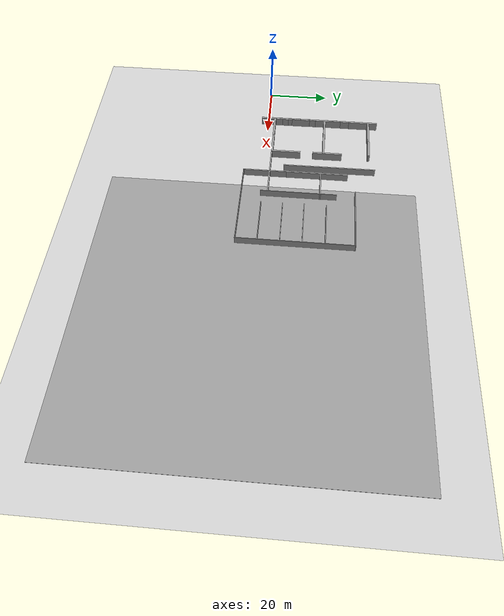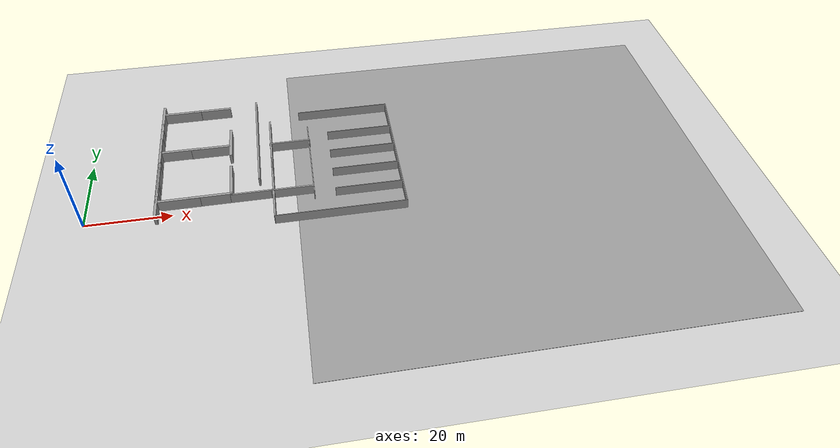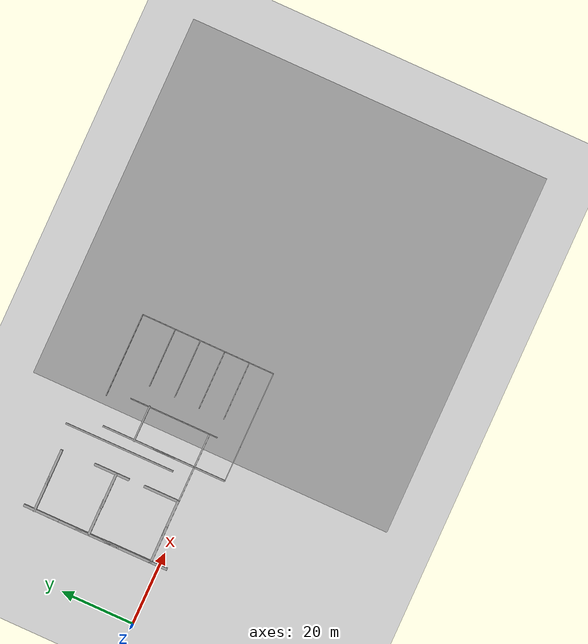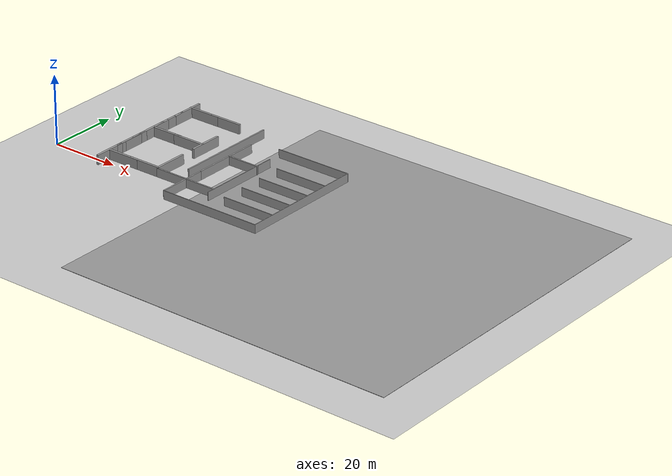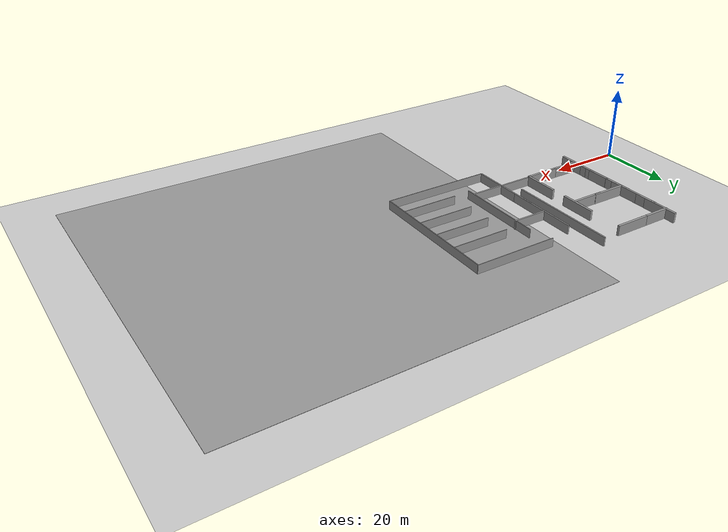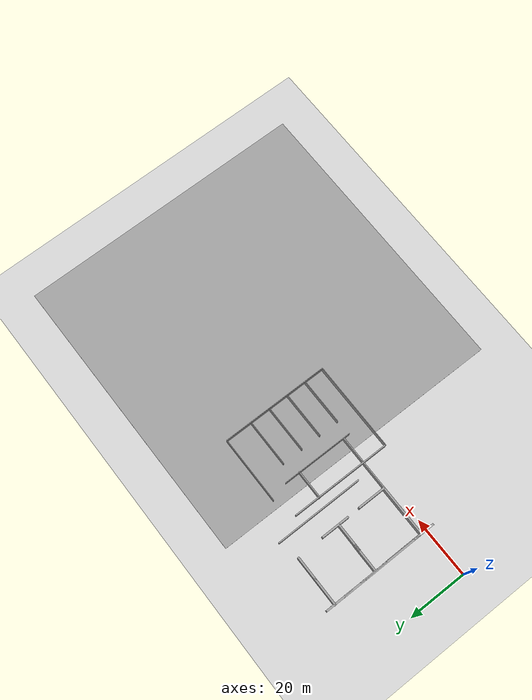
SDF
<sdf version="1.7">
 <world name="default">
  <model name="ground_plane">
   <static>1</static>
   <link name="link">
    <collision name="collision">
     <geometry><plane><normal>0 0 1</normal><size>100 100</size></plane></geometry>
     <surface><friction><ode><mu>100</mu><mu2>50</mu2></ode></friction></surface>
    </collision>
    <visual name="visual">
     <cast_shadows>0</cast_shadows>
     <geometry><plane><normal>0 0 1</normal><size>100 100</size></plane></geometry>
     <material>
      <script><uri>file://media/materials/scripts/gazebo.material</uri><name>Gazebo/Grey</name></script>
     </material>
    </visual>
   </link>
  </model>
  <model name="ground_plane_0">
   <static>1</static>
   <link name="link">
    <collision name="collision">
     <geometry><plane><normal>0 0 1</normal><size>100 100</size></plane></geometry>
     <surface>
      <contact><collide_bitmask>65535</collide_bitmask></contact>
      <friction><ode><mu>100</mu><mu2>50</mu2></ode></friction>
     </surface>
    </collision>
    <visual name="visual">
     <cast_shadows>0</cast_shadows>
     <geometry><plane><normal>0 0 1</normal><size>100 100</size></plane></geometry>
     <material>
      <script><uri>file://media/materials/scripts/gazebo.material</uri><name>Gazebo/Grey</name></script>
     </material>
    </visual>
   </link>
   <pose>98.3802 0.128223 0 0 -0 0</pose>
  </model>
  <model name="grey_wall_hou_clone_clone_clone_5">
   <link name="link">
    <pose>0 0 1.37589 0 -0 0</pose>
    <inertial>
     <inertia><ixx>0</ixx><ixy>0</ixy><ixz>0</ixz><iyy>0</iyy><iyz>0</iyz><izz>0</izz></inertia>
     <mass>0</mass>
    </inertial>
    <visual name="visual">
     <cast_shadows>0</cast_shadows>
     <geometry><box><size>9.82221 0.642976 2.8</size></box></geometry>
     <material>
      <script>
       <uri>model://grey_wall/materials/scripts</uri>
       <uri>model://grey_wall/materials/textures</uri>
       <name>vrc/grey_wall</name>
      </script>
      <shader type="pixel"><normal_map>__default__</normal_map></shader>
      <ambient>1 1 1 1</ambient>
      <diffuse>1 1 1 1</diffuse>
      <specular>0 0 0 1</specular>
      <emissive>0 0 0 1</emissive>
     </material>
    </visual>
    <collision name="collision">
     <geometry><box><size>9.82221 0.642976 2.8</size></box></geometry>
     <surface>
      <friction>
       <ode><mu>1</mu><mu2>1</mu2><fdir1>0 0 0</fdir1><slip1>0</slip1><slip2>0</slip2></ode>
       <torsional>
        <coefficient>1</coefficient>
        <patch_radius>0</patch_radius>
        <surface_radius>0</surface_radius>
        <use_patch_radius>1</use_patch_radius>
        <ode><slip>0</slip></ode>
       </torsional>
      </friction>
      <bounce><restitution_coefficient>0</restitution_coefficient><threshold>1e+06</threshold></bounce>
      <contact>
       <collide_without_contact>0</collide_without_contact>
       <collide_without_contact_bitmask>1</collide_without_contact_bitmask>
       <collide_bitmask>1</collide_bitmask>
       <ode>
        <soft_cfm>0</soft_cfm>
        <soft_erp>0.2</soft_erp>
        <kp>1e+13</kp>
        <kd>1</kd>
        <max_vel>0.01</max_vel>
        <min_depth>0</min_depth>
       </ode>
       <bullet>
        <split_impulse>1</split_impulse>
        <split_impulse_penetration_threshold>-0.01</split_impulse_penetration_threshold>
        <soft_cfm>0</soft_cfm>
        <soft_erp>0.2</soft_erp>
        <kp>1e+13</kp>
        <kd>1</kd>
       </bullet>
      </contact>
     </surface>
    </collision>
   </link>
   <static>1</static>
   <pose>21.5273 2.36287 0 0 -0 0</pose>
  </model>
  <model name="grey_wall_hou_clone_clone_3_clone_4">
   <link name="link">
    <pose>0 0 1.37589 0 -0 0</pose>
    <inertial>
     <inertia><ixx>0</ixx><ixy>0</ixy><ixz>0</ixz><iyy>0</iyy><iyz>0</iyz><izz>0</izz></inertia>
     <mass>0</mass>
    </inertial>
    <visual name="visual">
     <cast_shadows>0</cast_shadows>
     <geometry><box><size>9.82221 0.642976 2.8</size></box></geometry>
     <material>
      <script>
       <uri>model://grey_wall/materials/scripts</uri>
       <uri>model://grey_wall/materials/textures</uri>
       <name>vrc/grey_wall</name>
      </script>
      <shader type="pixel"><normal_map>__default__</normal_map></shader>
      <ambient>1 1 1 1</ambient>
      <diffuse>1 1 1 1</diffuse>
      <specular>0 0 0 1</specular>
      <emissive>0 0 0 1</emissive>
     </material>
    </visual>
    <collision name="collision">
     <geometry><box><size>9.82221 0.642976 2.8</size></box></geometry>
     <surface>
      <friction>
       <ode><mu>1</mu><mu2>1</mu2><fdir1>0 0 0</fdir1><slip1>0</slip1><slip2>0</slip2></ode>
       <torsional>
        <coefficient>1</coefficient>
        <patch_radius>0</patch_radius>
        <surface_radius>0</surface_radius>
        <use_patch_radius>1</use_patch_radius>
        <ode><slip>0</slip></ode>
       </torsional>
      </friction>
      <bounce><restitution_coefficient>0</restitution_coefficient><threshold>1e+06</threshold></bounce>
      <contact>
       <collide_without_contact>0</collide_without_contact>
       <collide_without_contact_bitmask>1</collide_without_contact_bitmask>
       <collide_bitmask>1</collide_bitmask>
       <ode>
        <soft_cfm>0</soft_cfm>
        <soft_erp>0.2</soft_erp>
        <kp>1e+13</kp>
        <kd>1</kd>
        <max_vel>0.01</max_vel>
        <min_depth>0</min_depth>
       </ode>
       <bullet>
        <split_impulse>1</split_impulse>
        <split_impulse_penetration_threshold>-0.01</split_impulse_penetration_threshold>
        <soft_cfm>0</soft_cfm>
        <soft_erp>0.2</soft_erp>
        <kp>1e+13</kp>
        <kd>1</kd>
       </bullet>
      </contact>
     </surface>
    </collision>
   </link>
   <static>1</static>
   <pose>16.3936 20.4757 0 0 0 -1.56855</pose>
  </model>
  <model name="grey_wall_hou_clone_clone_clone_6">
   <link name="link">
    <pose>0 0 1.37589 0 -0 0</pose>
    <inertial>
     <inertia><ixx>0</ixx><ixy>0</ixy><ixz>0</ixz><iyy>0</iyy><iyz>0</iyz><izz>0</izz></inertia>
     <mass>0</mass>
    </inertial>
    <visual name="visual">
     <cast_shadows>0</cast_shadows>
     <geometry><box><size>9.82221 0.642976 2.8</size></box></geometry>
     <material>
      <script>
       <uri>model://grey_wall/materials/scripts</uri>
       <uri>model://grey_wall/materials/textures</uri>
       <name>vrc/grey_wall</name>
      </script>
      <shader type="pixel"><normal_map>__default__</normal_map></shader>
      <ambient>1 1 1 1</ambient>
      <diffuse>1 1 1 1</diffuse>
      <specular>0 0 0 1</specular>
      <emissive>0 0 0 1</emissive>
     </material>
    </visual>
    <collision name="collision">
     <geometry><box><size>9.82221 0.642976 2.8</size></box></geometry>
     <surface>
      <friction>
       <ode><mu>1</mu><mu2>1</mu2><fdir1>0 0 0</fdir1><slip1>0</slip1><slip2>0</slip2></ode>
       <torsional>
        <coefficient>1</coefficient>
        <patch_radius>0</patch_radius>
        <surface_radius>0</surface_radius>
        <use_patch_radius>1</use_patch_radius>
        <ode><slip>0</slip></ode>
       </torsional>
      </friction>
      <bounce><restitution_coefficient>0</restitution_coefficient><threshold>1e+06</threshold></bounce>
      <contact>
       <collide_without_contact>0</collide_without_contact>
       <collide_without_contact_bitmask>1</collide_without_contact_bitmask>
       <collide_bitmask>1</collide_bitmask>
       <ode>
        <soft_cfm>0</soft_cfm>
        <soft_erp>0.2</soft_erp>
        <kp>1e+13</kp>
        <kd>1</kd>
        <max_vel>0.01</max_vel>
        <min_depth>0</min_depth>
       </ode>
       <bullet>
        <split_impulse>1</split_impulse>
        <split_impulse_penetration_threshold>-0.01</split_impulse_penetration_threshold>
        <soft_cfm>0</soft_cfm>
        <soft_erp>0.2</soft_erp>
        <kp>1e+13</kp>
        <kd>1</kd>
       </bullet>
      </contact>
     </surface>
    </collision>
   </link>
   <static>1</static>
   <pose>28.8284 2.39593 0 0 -0 0</pose>
  </model>
  <model name="grey_wall_hou_clone_clone_clone_7">
   <link name="link">
    <pose>0 0 1.37589 0 -0 0</pose>
    <inertial>
     <inertia><ixx>0</ixx><ixy>0</ixy><ixz>0</ixz><iyy>0</iyy><iyz>0</iyz><izz>0</izz></inertia>
     <mass>0</mass>
    </inertial>
    <visual name="visual">
     <cast_shadows>0</cast_shadows>
     <geometry><box><size>9.82221 0.642976 2.8</size></box></geometry>
     <material>
      <script>
       <uri>model://grey_wall/materials/scripts</uri>
       <uri>model://grey_wall/materials/textures</uri>
       <name>vrc/grey_wall</name>
      </script>
      <shader type="pixel"><normal_map>__default__</normal_map></shader>
      <ambient>1 1 1 1</ambient>
      <diffuse>1 1 1 1</diffuse>
      <specular>0 0 0 1</specular>
      <emissive>0 0 0 1</emissive>
     </material>
    </visual>
    <collision name="collision">
     <geometry><box><size>9.82221 0.642976 2.8</size></box></geometry>
     <surface>
      <friction>
       <ode><mu>1</mu><mu2>1</mu2><fdir1>0 0 0</fdir1><slip1>0</slip1><slip2>0</slip2></ode>
       <torsional>
        <coefficient>1</coefficient>
        <patch_radius>0</patch_radius>
        <surface_radius>0</surface_radius>
        <use_patch_radius>1</use_patch_radius>
        <ode><slip>0</slip></ode>
       </torsional>
      </friction>
      <bounce><restitution_coefficient>0</restitution_coefficient><threshold>1e+06</threshold></bounce>
      <contact>
       <collide_without_contact>0</collide_without_contact>
       <collide_without_contact_bitmask>1</collide_without_contact_bitmask>
       <collide_bitmask>1</collide_bitmask>
       <ode>
        <soft_cfm>0</soft_cfm>
        <soft_erp>0.2</soft_erp>
        <kp>1e+13</kp>
        <kd>1</kd>
        <max_vel>0.01</max_vel>
        <min_depth>0</min_depth>
       </ode>
       <bullet>
        <split_impulse>1</split_impulse>
        <split_impulse_penetration_threshold>-0.01</split_impulse_penetration_threshold>
        <soft_cfm>0</soft_cfm>
        <soft_erp>0.2</soft_erp>
        <kp>1e+13</kp>
        <kd>1</kd>
       </bullet>
      </contact>
     </surface>
    </collision>
   </link>
   <static>1</static>
   <pose>28.7009 19.7656 0 0 -0 0</pose>
  </model>
  <model name="grey_wall_hou_clone_clone_clone_8">
   <link name="link">
    <pose>0 0 1.37589 0 -0 0</pose>
    <inertial>
     <inertia><ixx>0</ixx><ixy>0</ixy><ixz>0</ixz><iyy>0</iyy><iyz>0</iyz><izz>0</izz></inertia>
     <mass>0</mass>
    </inertial>
    <visual name="visual">
     <cast_shadows>0</cast_shadows>
     <geometry><box><size>9.82221 0.642976 2.8</size></box></geometry>
     <material>
      <script>
       <uri>model://grey_wall/materials/scripts</uri>
       <uri>model://grey_wall/materials/textures</uri>
       <name>vrc/grey_wall</name>
      </script>
      <shader type="pixel"><normal_map>__default__</normal_map></shader>
      <ambient>1 1 1 1</ambient>
      <diffuse>1 1 1 1</diffuse>
      <specular>0 0 0 1</specular>
      <emissive>0 0 0 1</emissive>
     </material>
    </visual>
    <collision name="collision">
     <geometry><box><size>9.82221 0.642976 2.8</size></box></geometry>
     <surface>
      <friction>
       <ode><mu>1</mu><mu2>1</mu2><fdir1>0 0 0</fdir1><slip1>0</slip1><slip2>0</slip2></ode>
       <torsional>
        <coefficient>1</coefficient>
        <patch_radius>0</patch_radius>
        <surface_radius>0</surface_radius>
        <use_patch_radius>1</use_patch_radius>
        <ode><slip>0</slip></ode>
       </torsional>
      </friction>
      <bounce><restitution_coefficient>0</restitution_coefficient><threshold>1e+06</threshold></bounce>
      <contact>
       <collide_without_contact>0</collide_without_contact>
       <collide_without_contact_bitmask>1</collide_without_contact_bitmask>
       <collide_bitmask>1</collide_bitmask>
       <ode>
        <soft_cfm>0</soft_cfm>
        <soft_erp>0.2</soft_erp>
        <kp>1e+13</kp>
        <kd>1</kd>
        <max_vel>0.01</max_vel>
        <min_depth>0</min_depth>
       </ode>
       <bullet>
        <split_impulse>1</split_impulse>
        <split_impulse_penetration_threshold>-0.01</split_impulse_penetration_threshold>
        <soft_cfm>0</soft_cfm>
        <soft_erp>0.2</soft_erp>
        <kp>1e+13</kp>
        <kd>1</kd>
       </bullet>
      </contact>
     </surface>
    </collision>
   </link>
   <static>1</static>
   <pose>21.1249 19.8433 0 0 -0 0</pose>
  </model>
  <model name="grey_wall_hou_clone_clone_clone_9">
   <link name="link">
    <pose>0 0 1.37589 0 -0 0</pose>
    <inertial>
     <inertia><ixx>0</ixx><ixy>0</ixy><ixz>0</ixz><iyy>0</iyy><iyz>0</iyz><izz>0</izz></inertia>
     <mass>0</mass>
    </inertial>
    <visual name="visual">
     <cast_shadows>0</cast_shadows>
     <geometry><box><size>9.82221 0.642976 2.8</size></box></geometry>
     <material>
      <script>
       <uri>model://grey_wall/materials/scripts</uri>
       <uri>model://grey_wall/materials/textures</uri>
       <name>vrc/grey_wall</name>
      </script>
      <shader type="pixel"><normal_map>__default__</normal_map></shader>
      <ambient>1 1 1 1</ambient>
      <diffuse>1 1 1 1</diffuse>
      <specular>0 0 0 1</specular>
      <emissive>0 0 0 1</emissive>
     </material>
    </visual>
    <collision name="collision">
     <geometry><box><size>9.82221 0.642976 2.8</size></box></geometry>
     <surface>
      <friction>
       <ode><mu>1</mu><mu2>1</mu2><fdir1>0 0 0</fdir1><slip1>0</slip1><slip2>0</slip2></ode>
       <torsional>
        <coefficient>1</coefficient>
        <patch_radius>0</patch_radius>
        <surface_radius>0</surface_radius>
        <use_patch_radius>1</use_patch_radius>
        <ode><slip>0</slip></ode>
       </torsional>
      </friction>
      <bounce><restitution_coefficient>0</restitution_coefficient><threshold>1e+06</threshold></bounce>
      <contact>
       <collide_without_contact>0</collide_without_contact>
       <collide_without_contact_bitmask>1</collide_without_contact_bitmask>
       <collide_bitmask>1</collide_bitmask>
       <ode>
        <soft_cfm>0</soft_cfm>
        <soft_erp>0.2</soft_erp>
        <kp>1e+13</kp>
        <kd>1</kd>
        <max_vel>0.01</max_vel>
        <min_depth>0</min_depth>
       </ode>
       <bullet>
        <split_impulse>1</split_impulse>
        <split_impulse_penetration_threshold>-0.01</split_impulse_penetration_threshold>
        <soft_cfm>0</soft_cfm>
        <soft_erp>0.2</soft_erp>
        <kp>1e+13</kp>
        <kd>1</kd>
       </bullet>
      </contact>
     </surface>
    </collision>
   </link>
   <static>1</static>
   <pose>20.8801 35.0651 0 0 -0 0</pose>
  </model>
  <model name="grey_wall_hou_clone_clone_clone_10">
   <link name="link">
    <pose>0 0 1.37589 0 -0 0</pose>
    <inertial>
     <inertia><ixx>0</ixx><ixy>0</ixy><ixz>0</ixz><iyy>0</iyy><iyz>0</iyz><izz>0</izz></inertia>
     <mass>0</mass>
    </inertial>
    <visual name="visual">
     <cast_shadows>0</cast_shadows>
     <geometry><box><size>9.82221 0.642976 2.8</size></box></geometry>
     <material>
      <script>
       <uri>model://grey_wall/materials/scripts</uri>
       <uri>model://grey_wall/materials/textures</uri>
       <name>vrc/grey_wall</name>
      </script>
      <shader type="pixel"><normal_map>__default__</normal_map></shader>
      <ambient>1 1 1 1</ambient>
      <diffuse>1 1 1 1</diffuse>
      <specular>0 0 0 1</specular>
      <emissive>0 0 0 1</emissive>
     </material>
    </visual>
    <collision name="collision">
     <geometry><box><size>9.82221 0.642976 2.8</size></box></geometry>
     <surface>
      <friction>
       <ode><mu>1</mu><mu2>1</mu2><fdir1>0 0 0</fdir1><slip1>0</slip1><slip2>0</slip2></ode>
       <torsional>
        <coefficient>1</coefficient>
        <patch_radius>0</patch_radius>
        <surface_radius>0</surface_radius>
        <use_patch_radius>1</use_patch_radius>
        <ode><slip>0</slip></ode>
       </torsional>
      </friction>
      <bounce><restitution_coefficient>0</restitution_coefficient><threshold>1e+06</threshold></bounce>
      <contact>
       <collide_without_contact>0</collide_without_contact>
       <collide_without_contact_bitmask>1</collide_without_contact_bitmask>
       <collide_bitmask>1</collide_bitmask>
       <ode>
        <soft_cfm>0</soft_cfm>
        <soft_erp>0.2</soft_erp>
        <kp>1e+13</kp>
        <kd>1</kd>
        <max_vel>0.01</max_vel>
        <min_depth>0</min_depth>
       </ode>
       <bullet>
        <split_impulse>1</split_impulse>
        <split_impulse_penetration_threshold>-0.01</split_impulse_penetration_threshold>
        <soft_cfm>0</soft_cfm>
        <soft_erp>0.2</soft_erp>
        <kp>1e+13</kp>
        <kd>1</kd>
       </bullet>
      </contact>
     </surface>
    </collision>
   </link>
   <static>1</static>
   <pose>28.4204 35.0767 0 0 -0 0</pose>
  </model>
  <model name="grey_wall_short_0_clone_2">
   <link name="link">
    <pose>0 0 1.37589 0 -0 0</pose>
    <inertial>
     <inertia><ixx>0</ixx><ixy>0</ixy><ixz>0</ixz><iyy>0</iyy><iyz>0</iyz><izz>0</izz></inertia>
     <mass>0</mass>
    </inertial>
    <visual name="visual">
     <cast_shadows>0</cast_shadows>
     <geometry><box><size>3.01651 0.642976 2.8</size></box></geometry>
     <material>
      <script>
       <uri>model://grey_wall/materials/scripts</uri>
       <uri>model://grey_wall/materials/textures</uri>
       <name>vrc/grey_wall</name>
      </script>
      <shader type="pixel"><normal_map>__default__</normal_map></shader>
      <ambient>1 1 1 1</ambient>
      <diffuse>1 1 1 1</diffuse>
      <specular>0 0 0 1</specular>
      <emissive>0 0 0 1</emissive>
     </material>
    </visual>
    <collision name="collision">
     <geometry><box><size>3.01651 0.642976 2.8</size></box></geometry>
     <surface>
      <friction>
       <ode><mu>1</mu><mu2>1</mu2><fdir1>0 0 0</fdir1><slip1>0</slip1><slip2>0</slip2></ode>
       <torsional>
        <coefficient>1</coefficient>
        <patch_radius>0</patch_radius>
        <surface_radius>0</surface_radius>
        <use_patch_radius>1</use_patch_radius>
        <ode><slip>0</slip></ode>
       </torsional>
      </friction>
      <bounce><restitution_coefficient>0</restitution_coefficient><threshold>1e+06</threshold></bounce>
      <contact>
       <collide_without_contact>0</collide_without_contact>
       <collide_without_contact_bitmask>1</collide_without_contact_bitmask>
       <collide_bitmask>1</collide_bitmask>
       <ode>
        <soft_cfm>0</soft_cfm>
        <soft_erp>0.2</soft_erp>
        <kp>1e+13</kp>
        <kd>1</kd>
        <max_vel>0.01</max_vel>
        <min_depth>0</min_depth>
       </ode>
       <bullet>
        <split_impulse>1</split_impulse>
        <split_impulse_penetration_threshold>-0.01</split_impulse_penetration_threshold>
        <soft_cfm>0</soft_cfm>
        <soft_erp>0.2</soft_erp>
        <kp>1e+13</kp>
        <kd>1</kd>
       </bullet>
      </contact>
     </surface>
    </collision>
   </link>
   <static>1</static>
   <pose>16.5494 3.563 0 0 0 -1.57204</pose>
  </model>
  <model name="grey_wall_short_0_clone_3">
   <link name="link">
    <pose>0 0 1.37589 0 -0 0</pose>
    <inertial>
     <inertia><ixx>0</ixx><ixy>0</ixy><ixz>0</ixz><iyy>0</iyy><iyz>0</iyz><izz>0</izz></inertia>
     <mass>0</mass>
    </inertial>
    <visual name="visual">
     <cast_shadows>0</cast_shadows>
     <geometry><box><size>3.01651 0.642976 2.8</size></box></geometry>
     <material>
      <script>
       <uri>model://grey_wall/materials/scripts</uri>
       <uri>model://grey_wall/materials/textures</uri>
       <name>vrc/grey_wall</name>
      </script>
      <shader type="pixel"><normal_map>__default__</normal_map></shader>
      <ambient>1 1 1 1</ambient>
      <diffuse>1 1 1 1</diffuse>
      <specular>0 0 0 1</specular>
      <emissive>0 0 0 1</emissive>
     </material>
    </visual>
    <collision name="collision">
     <geometry><box><size>3.01651 0.642976 2.8</size></box></geometry>
     <surface>
      <friction>
       <ode><mu>1</mu><mu2>1</mu2><fdir1>0 0 0</fdir1><slip1>0</slip1><slip2>0</slip2></ode>
       <torsional>
        <coefficient>1</coefficient>
        <patch_radius>0</patch_radius>
        <surface_radius>0</surface_radius>
        <use_patch_radius>1</use_patch_radius>
        <ode><slip>0</slip></ode>
       </torsional>
      </friction>
      <bounce><restitution_coefficient>0</restitution_coefficient><threshold>1e+06</threshold></bounce>
      <contact>
       <collide_without_contact>0</collide_without_contact>
       <collide_without_contact_bitmask>1</collide_without_contact_bitmask>
       <collide_bitmask>1</collide_bitmask>
       <ode>
        <soft_cfm>0</soft_cfm>
        <soft_erp>0.2</soft_erp>
        <kp>1e+13</kp>
        <kd>1</kd>
        <max_vel>0.01</max_vel>
        <min_depth>0</min_depth>
       </ode>
       <bullet>
        <split_impulse>1</split_impulse>
        <split_impulse_penetration_threshold>-0.01</split_impulse_penetration_threshold>
        <soft_cfm>0</soft_cfm>
        <soft_erp>0.2</soft_erp>
        <kp>1e+13</kp>
        <kd>1</kd>
       </bullet>
      </contact>
     </surface>
    </collision>
   </link>
   <static>1</static>
   <pose>16.5374 5.55252 0 0 0 -1.57204</pose>
  </model>
  <model name="grey_wall_short_0_clone_4">
   <link name="link">
    <pose>0 0 1.37589 0 -0 0</pose>
    <inertial>
     <inertia><ixx>0</ixx><ixy>0</ixy><ixz>0</ixz><iyy>0</iyy><iyz>0</iyz><izz>0</izz></inertia>
     <mass>0</mass>
    </inertial>
    <visual name="visual">
     <cast_shadows>0</cast_shadows>
     <geometry><box><size>3.01651 0.642976 2.8</size></box></geometry>
     <material>
      <script>
       <uri>model://grey_wall/materials/scripts</uri>
       <uri>model://grey_wall/materials/textures</uri>
       <name>vrc/grey_wall</name>
      </script>
      <shader type="pixel"><normal_map>__default__</normal_map></shader>
      <ambient>1 1 1 1</ambient>
      <diffuse>1 1 1 1</diffuse>
      <specular>0 0 0 1</specular>
      <emissive>0 0 0 1</emissive>
     </material>
    </visual>
    <collision name="collision">
     <geometry><box><size>3.01651 0.642976 2.8</size></box></geometry>
     <surface>
      <friction>
       <ode><mu>1</mu><mu2>1</mu2><fdir1>0 0 0</fdir1><slip1>0</slip1><slip2>0</slip2></ode>
       <torsional>
        <coefficient>1</coefficient>
        <patch_radius>0</patch_radius>
        <surface_radius>0</surface_radius>
        <use_patch_radius>1</use_patch_radius>
        <ode><slip>0</slip></ode>
       </torsional>
      </friction>
      <bounce><restitution_coefficient>0</restitution_coefficient><threshold>1e+06</threshold></bounce>
      <contact>
       <collide_without_contact>0</collide_without_contact>
       <collide_without_contact_bitmask>1</collide_without_contact_bitmask>
       <collide_bitmask>1</collide_bitmask>
       <ode>
        <soft_cfm>0</soft_cfm>
        <soft_erp>0.2</soft_erp>
        <kp>1e+13</kp>
        <kd>1</kd>
        <max_vel>0.01</max_vel>
        <min_depth>0</min_depth>
       </ode>
       <bullet>
        <split_impulse>1</split_impulse>
        <split_impulse_penetration_threshold>-0.01</split_impulse_penetration_threshold>
        <soft_cfm>0</soft_cfm>
        <soft_erp>0.2</soft_erp>
        <kp>1e+13</kp>
        <kd>1</kd>
       </bullet>
      </contact>
     </surface>
    </collision>
   </link>
   <static>1</static>
   <pose>16.5353 6.8515 0 0 0 -1.57204</pose>
  </model>
  <model name="grey_wall_short_0_clone_5">
   <link name="link">
    <pose>0 0 1.37589 0 -0 0</pose>
    <inertial>
     <inertia><ixx>0</ixx><ixy>0</ixy><ixz>0</ixz><iyy>0</iyy><iyz>0</iyz><izz>0</izz></inertia>
     <mass>0</mass>
    </inertial>
    <visual name="visual">
     <cast_shadows>0</cast_shadows>
     <geometry><box><size>3.01651 0.642976 2.8</size></box></geometry>
     <material>
      <script>
       <uri>model://grey_wall/materials/scripts</uri>
       <uri>model://grey_wall/materials/textures</uri>
       <name>vrc/grey_wall</name>
      </script>
      <shader type="pixel"><normal_map>__default__</normal_map></shader>
      <ambient>1 1 1 1</ambient>
      <diffuse>1 1 1 1</diffuse>
      <specular>0 0 0 1</specular>
      <emissive>0 0 0 1</emissive>
     </material>
    </visual>
    <collision name="collision">
     <geometry><box><size>3.01651 0.642976 2.8</size></box></geometry>
     <surface>
      <friction>
       <ode><mu>1</mu><mu2>1</mu2><fdir1>0 0 0</fdir1><slip1>0</slip1><slip2>0</slip2></ode>
       <torsional>
        <coefficient>1</coefficient>
        <patch_radius>0</patch_radius>
        <surface_radius>0</surface_radius>
        <use_patch_radius>1</use_patch_radius>
        <ode><slip>0</slip></ode>
       </torsional>
      </friction>
      <bounce><restitution_coefficient>0</restitution_coefficient><threshold>1e+06</threshold></bounce>
      <contact>
       <collide_without_contact>0</collide_without_contact>
       <collide_without_contact_bitmask>1</collide_without_contact_bitmask>
       <collide_bitmask>1</collide_bitmask>
       <ode>
        <soft_cfm>0</soft_cfm>
        <soft_erp>0.2</soft_erp>
        <kp>1e+13</kp>
        <kd>1</kd>
        <max_vel>0.01</max_vel>
        <min_depth>0</min_depth>
       </ode>
       <bullet>
        <split_impulse>1</split_impulse>
        <split_impulse_penetration_threshold>-0.01</split_impulse_penetration_threshold>
        <soft_cfm>0</soft_cfm>
        <soft_erp>0.2</soft_erp>
        <kp>1e+13</kp>
        <kd>1</kd>
       </bullet>
      </contact>
     </surface>
    </collision>
   </link>
   <static>1</static>
   <pose>16.4538 12.9881 0 0 0 -1.57204</pose>
  </model>
  <model name="grey_wall_short_0_clone_6">
   <link name="link">
    <pose>0 0 1.37589 0 -0 0</pose>
    <inertial>
     <inertia><ixx>0</ixx><ixy>0</ixy><ixz>0</ixz><iyy>0</iyy><iyz>0</iyz><izz>0</izz></inertia>
     <mass>0</mass>
    </inertial>
    <visual name="visual">
     <cast_shadows>0</cast_shadows>
     <geometry><box><size>3.01651 0.642976 2.8</size></box></geometry>
     <material>
      <script>
       <uri>model://grey_wall/materials/scripts</uri>
       <uri>model://grey_wall/materials/textures</uri>
       <name>vrc/grey_wall</name>
      </script>
      <shader type="pixel"><normal_map>__default__</normal_map></shader>
      <ambient>1 1 1 1</ambient>
      <diffuse>1 1 1 1</diffuse>
      <specular>0 0 0 1</specular>
      <emissive>0 0 0 1</emissive>
     </material>
    </visual>
    <collision name="collision">
     <geometry><box><size>3.01651 0.642976 2.8</size></box></geometry>
     <surface>
      <friction>
       <ode><mu>1</mu><mu2>1</mu2><fdir1>0 0 0</fdir1><slip1>0</slip1><slip2>0</slip2></ode>
       <torsional>
        <coefficient>1</coefficient>
        <patch_radius>0</patch_radius>
        <surface_radius>0</surface_radius>
        <use_patch_radius>1</use_patch_radius>
        <ode><slip>0</slip></ode>
       </torsional>
      </friction>
      <bounce><restitution_coefficient>0</restitution_coefficient><threshold>1e+06</threshold></bounce>
      <contact>
       <collide_without_contact>0</collide_without_contact>
       <collide_without_contact_bitmask>1</collide_without_contact_bitmask>
       <collide_bitmask>1</collide_bitmask>
       <ode>
        <soft_cfm>0</soft_cfm>
        <soft_erp>0.2</soft_erp>
        <kp>1e+13</kp>
        <kd>1</kd>
        <max_vel>0.01</max_vel>
        <min_depth>0</min_depth>
       </ode>
       <bullet>
        <split_impulse>1</split_impulse>
        <split_impulse_penetration_threshold>-0.01</split_impulse_penetration_threshold>
        <soft_cfm>0</soft_cfm>
        <soft_erp>0.2</soft_erp>
        <kp>1e+13</kp>
        <kd>1</kd>
       </bullet>
      </contact>
     </surface>
    </collision>
   </link>
   <static>1</static>
   <pose>16.4413 15.1358 0 0 0 -1.57204</pose>
  </model>
  <model name="grey_wall_hou_clone_clone_3_clone_0_clone_1_clone_2_clone">
   <link name="link">
    <pose>0 0 1.37589 0 -0 0</pose>
    <inertial>
     <inertia><ixx>0</ixx><ixy>0</ixy><ixz>0</ixz><iyy>0</iyy><iyz>0</iyz><izz>0</izz></inertia>
     <mass>0</mass>
    </inertial>
    <visual name="visual">
     <cast_shadows>0</cast_shadows>
     <geometry><box><size>9.82221 0.642976 2.8</size></box></geometry>
     <material>
      <script>
       <uri>model://grey_wall/materials/scripts</uri>
       <uri>model://grey_wall/materials/textures</uri>
       <name>vrc/grey_wall</name>
      </script>
      <shader type="pixel"><normal_map>__default__</normal_map></shader>
      <ambient>1 1 1 1</ambient>
      <diffuse>1 1 1 1</diffuse>
      <specular>0 0 0 1</specular>
      <emissive>0 0 0 1</emissive>
     </material>
    </visual>
    <collision name="collision">
     <geometry><box><size>9.82221 0.642976 2.8</size></box></geometry>
     <surface>
      <friction>
       <ode><mu>1</mu><mu2>1</mu2><fdir1>0 0 0</fdir1><slip1>0</slip1><slip2>0</slip2></ode>
       <torsional>
        <coefficient>1</coefficient>
        <patch_radius>0</patch_radius>
        <surface_radius>0</surface_radius>
        <use_patch_radius>1</use_patch_radius>
        <ode><slip>0</slip></ode>
       </torsional>
      </friction>
      <bounce><restitution_coefficient>0</restitution_coefficient><threshold>1e+06</threshold></bounce>
      <contact>
       <collide_without_contact>0</collide_without_contact>
       <collide_without_contact_bitmask>1</collide_without_contact_bitmask>
       <collide_bitmask>1</collide_bitmask>
       <ode>
        <soft_cfm>0</soft_cfm>
        <soft_erp>0.2</soft_erp>
        <kp>1e+13</kp>
        <kd>1</kd>
        <max_vel>0.01</max_vel>
        <min_depth>0</min_depth>
       </ode>
       <bullet>
        <split_impulse>1</split_impulse>
        <split_impulse_penetration_threshold>-0.01</split_impulse_penetration_threshold>
        <soft_cfm>0</soft_cfm>
        <soft_erp>0.2</soft_erp>
        <kp>1e+13</kp>
        <kd>1</kd>
       </bullet>
      </contact>
     </surface>
    </collision>
   </link>
   <static>1</static>
   <pose>16.3827 33.2449 0 0 0 -1.56855</pose>
  </model>
  <model name="grey_wall_hou_clone_clone_3_clone_0_clone_1_clone_2_clone_clone_0">
   <link name="link">
    <pose>0 0 1.37589 0 -0 0</pose>
    <inertial>
     <inertia><ixx>0</ixx><ixy>0</ixy><ixz>0</ixz><iyy>0</iyy><iyz>0</iyz><izz>0</izz></inertia>
     <mass>0</mass>
    </inertial>
    <visual name="visual">
     <cast_shadows>0</cast_shadows>
     <geometry><box><size>9.82221 0.642976 2.8</size></box></geometry>
     <material>
      <script>
       <uri>model://grey_wall/materials/scripts</uri>
       <uri>model://grey_wall/materials/textures</uri>
       <name>vrc/grey_wall</name>
      </script>
      <shader type="pixel"><normal_map>__default__</normal_map></shader>
      <ambient>1 1 1 1</ambient>
      <diffuse>1 1 1 1</diffuse>
      <specular>0 0 0 1</specular>
      <emissive>0 0 0 1</emissive>
     </material>
    </visual>
    <collision name="collision">
     <geometry><box><size>9.82221 0.642976 2.8</size></box></geometry>
     <surface>
      <friction>
       <ode><mu>1</mu><mu2>1</mu2><fdir1>0 0 0</fdir1><slip1>0</slip1><slip2>0</slip2></ode>
       <torsional>
        <coefficient>1</coefficient>
        <patch_radius>0</patch_radius>
        <surface_radius>0</surface_radius>
        <use_patch_radius>1</use_patch_radius>
        <ode><slip>0</slip></ode>
       </torsional>
      </friction>
      <bounce><restitution_coefficient>0</restitution_coefficient><threshold>1e+06</threshold></bounce>
      <contact>
       <collide_without_contact>0</collide_without_contact>
       <collide_without_contact_bitmask>1</collide_without_contact_bitmask>
       <collide_bitmask>1</collide_bitmask>
       <ode>
        <soft_cfm>0</soft_cfm>
        <soft_erp>0.2</soft_erp>
        <kp>1e+13</kp>
        <kd>1</kd>
        <max_vel>0.01</max_vel>
        <min_depth>0</min_depth>
       </ode>
       <bullet>
        <split_impulse>1</split_impulse>
        <split_impulse_penetration_threshold>-0.01</split_impulse_penetration_threshold>
        <soft_cfm>0</soft_cfm>
        <soft_erp>0.2</soft_erp>
        <kp>1e+13</kp>
        <kd>1</kd>
       </bullet>
      </contact>
     </surface>
    </collision>
   </link>
   <static>1</static>
   <pose>16.3685 26.5475 0 0 0 -1.56855</pose>
  </model>
  <model name="grey_wall_hou_clone_clone_3_clone_0_clone_1_clone_2_clone_clone_1">
   <link name="link">
    <pose>0 0 1.37589 0 -0 0</pose>
    <inertial>
     <inertia><ixx>0</ixx><ixy>0</ixy><ixz>0</ixz><iyy>0</iyy><iyz>0</iyz><izz>0</izz></inertia>
     <mass>0</mass>
    </inertial>
    <visual name="visual">
     <cast_shadows>0</cast_shadows>
     <geometry><box><size>9.82221 0.642976 2.8</size></box></geometry>
     <material>
      <script>
       <uri>model://grey_wall/materials/scripts</uri>
       <uri>model://grey_wall/materials/textures</uri>
       <name>vrc/grey_wall</name>
      </script>
      <shader type="pixel"><normal_map>__default__</normal_map></shader>
      <ambient>1 1 1 1</ambient>
      <diffuse>1 1 1 1</diffuse>
      <specular>0 0 0 1</specular>
      <emissive>0 0 0 1</emissive>
     </material>
    </visual>
    <collision name="collision">
     <geometry><box><size>9.82221 0.642976 2.8</size></box></geometry>
     <surface>
      <friction>
       <ode><mu>1</mu><mu2>1</mu2><fdir1>0 0 0</fdir1><slip1>0</slip1><slip2>0</slip2></ode>
       <torsional>
        <coefficient>1</coefficient>
        <patch_radius>0</patch_radius>
        <surface_radius>0</surface_radius>
        <use_patch_radius>1</use_patch_radius>
        <ode><slip>0</slip></ode>
       </torsional>
      </friction>
      <bounce><restitution_coefficient>0</restitution_coefficient><threshold>1e+06</threshold></bounce>
      <contact>
       <collide_without_contact>0</collide_without_contact>
       <collide_without_contact_bitmask>1</collide_without_contact_bitmask>
       <collide_bitmask>1</collide_bitmask>
       <ode>
        <soft_cfm>0</soft_cfm>
        <soft_erp>0.2</soft_erp>
        <kp>1e+13</kp>
        <kd>1</kd>
        <max_vel>0.01</max_vel>
        <min_depth>0</min_depth>
       </ode>
       <bullet>
        <split_impulse>1</split_impulse>
        <split_impulse_penetration_threshold>-0.01</split_impulse_penetration_threshold>
        <soft_cfm>0</soft_cfm>
        <soft_erp>0.2</soft_erp>
        <kp>1e+13</kp>
        <kd>1</kd>
       </bullet>
      </contact>
     </surface>
    </collision>
   </link>
   <static>1</static>
   <pose>16.5159 9.63373 0 0 0 -1.56855</pose>
  </model>
  <model name="grey_wall_hou_clone_clone_3_clone_0_clone_1_clone_1">
   <link name="link">
    <pose>0 0 1.37589 0 -0 0</pose>
    <inertial>
     <inertia><ixx>0</ixx><ixy>0</ixy><ixz>0</ixz><iyy>0</iyy><iyz>0</iyz><izz>0</izz></inertia>
     <mass>0</mass>
    </inertial>
    <visual name="visual">
     <cast_shadows>0</cast_shadows>
     <geometry><box><size>9.82221 0.642976 2.8</size></box></geometry>
     <material>
      <script>
       <uri>model://grey_wall/materials/scripts</uri>
       <uri>model://grey_wall/materials/textures</uri>
       <name>vrc/grey_wall</name>
      </script>
      <shader type="pixel"><normal_map>__default__</normal_map></shader>
      <ambient>1 1 1 1</ambient>
      <diffuse>1 1 1 1</diffuse>
      <specular>0 0 0 1</specular>
      <emissive>0 0 0 1</emissive>
     </material>
    </visual>
    <collision name="collision">
     <geometry><box><size>9.82221 0.642976 2.8</size></box></geometry>
     <surface>
      <friction>
       <ode><mu>1</mu><mu2>1</mu2><fdir1>0 0 0</fdir1><slip1>0</slip1><slip2>0</slip2></ode>
       <torsional>
        <coefficient>1</coefficient>
        <patch_radius>0</patch_radius>
        <surface_radius>0</surface_radius>
        <use_patch_radius>1</use_patch_radius>
        <ode><slip>0</slip></ode>
       </torsional>
      </friction>
      <bounce><restitution_coefficient>0</restitution_coefficient><threshold>1e+06</threshold></bounce>
      <contact>
       <collide_without_contact>0</collide_without_contact>
       <collide_without_contact_bitmask>1</collide_without_contact_bitmask>
       <collide_bitmask>1</collide_bitmask>
       <ode>
        <soft_cfm>0</soft_cfm>
        <soft_erp>0.2</soft_erp>
        <kp>1e+13</kp>
        <kd>1</kd>
        <max_vel>0.01</max_vel>
        <min_depth>0</min_depth>
       </ode>
       <bullet>
        <split_impulse>1</split_impulse>
        <split_impulse_penetration_threshold>-0.01</split_impulse_penetration_threshold>
        <soft_cfm>0</soft_cfm>
        <soft_erp>0.2</soft_erp>
        <kp>1e+13</kp>
        <kd>1</kd>
       </bullet>
      </contact>
     </surface>
    </collision>
   </link>
   <static>1</static>
   <pose>33.416 21.0315 0 0 0 -1.56855</pose>
  </model>
  <model name="grey_wall_hou_clone_clone_3_clone_0_clone_1_clone_1_clone">
   <link name="link">
    <pose>0 0 1.37589 0 -0 0</pose>
    <inertial>
     <inertia><ixx>0</ixx><ixy>0</ixy><ixz>0</ixz><iyy>0</iyy><iyz>0</iyz><izz>0</izz></inertia>
     <mass>0</mass>
    </inertial>
    <visual name="visual">
     <cast_shadows>0</cast_shadows>
     <geometry><box><size>9.82221 0.642976 2.8</size></box></geometry>
     <material>
      <script>
       <uri>model://grey_wall/materials/scripts</uri>
       <uri>model://grey_wall/materials/textures</uri>
       <name>vrc/grey_wall</name>
      </script>
      <shader type="pixel"><normal_map>__default__</normal_map></shader>
      <ambient>1 1 1 1</ambient>
      <diffuse>1 1 1 1</diffuse>
      <specular>0 0 0 1</specular>
      <emissive>0 0 0 1</emissive>
     </material>
    </visual>
    <collision name="collision">
     <geometry><box><size>9.82221 0.642976 2.8</size></box></geometry>
     <surface>
      <friction>
       <ode><mu>1</mu><mu2>1</mu2><fdir1>0 0 0</fdir1><slip1>0</slip1><slip2>0</slip2></ode>
       <torsional>
        <coefficient>1</coefficient>
        <patch_radius>0</patch_radius>
        <surface_radius>0</surface_radius>
        <use_patch_radius>1</use_patch_radius>
        <ode><slip>0</slip></ode>
       </torsional>
      </friction>
      <bounce><restitution_coefficient>0</restitution_coefficient><threshold>1e+06</threshold></bounce>
      <contact>
       <collide_without_contact>0</collide_without_contact>
       <collide_without_contact_bitmask>1</collide_without_contact_bitmask>
       <collide_bitmask>1</collide_bitmask>
       <ode>
        <soft_cfm>0</soft_cfm>
        <soft_erp>0.2</soft_erp>
        <kp>1e+13</kp>
        <kd>1</kd>
        <max_vel>0.01</max_vel>
        <min_depth>0</min_depth>
       </ode>
       <bullet>
        <split_impulse>1</split_impulse>
        <split_impulse_penetration_threshold>-0.01</split_impulse_penetration_threshold>
        <soft_cfm>0</soft_cfm>
        <soft_erp>0.2</soft_erp>
        <kp>1e+13</kp>
        <kd>1</kd>
       </bullet>
      </contact>
     </surface>
    </collision>
   </link>
   <static>1</static>
   <pose>33.5286 7.09799 0 0 0 -1.56855</pose>
  </model>
  <model name="area7_clone_0_clone">
   <pose>59.5612 23.8802 0 0 -0 1.5705</pose>
   <link name="Wall_12">
    <collision name="Wall_12_Collision">
     <geometry><box><size>30.5 0.2 2.5</size></box></geometry>
     <pose>0 0 1.25 0 -0 0</pose>
    </collision>
    <visual name="Wall_12_Visual">
     <pose>0 0 1.25 0 -0 0</pose>
     <geometry><box><size>30.5 0.2 2.5</size></box></geometry>
     <material>
      <script><uri>file://media/materials/scripts/gazebo.material</uri><name>Gazebo/Grey</name></script>
      <ambient>1 1 1 1</ambient>
     </material>
     <meta><layer>0</layer></meta>
    </visual>
    <pose>-30.2634 1.15551 0 0 -0 -1.5708</pose>
   </link>
   <link name="Wall_14">
    <collision name="Wall_14_Collision">
     <geometry><box><size>37.0498 0.2 2.5</size></box></geometry>
     <pose>0 0 1.25 0 -0 0</pose>
    </collision>
    <visual name="Wall_14_Visual">
     <pose>0 0 1.25 0 -0 0</pose>
     <geometry><box><size>37.0498 0.2 2.5</size></box></geometry>
     <material>
      <script><uri>file://media/materials/scripts/gazebo.material</uri><name>Gazebo/Grey</name></script>
      <ambient>1 1 1 1</ambient>
     </material>
     <meta><layer>0</layer></meta>
    </visual>
    <pose>-11.8146 -14.0155 0 0 -0 0</pose>
   </link>
   <link name="Wall_16">
    <collision name="Wall_16_Collision">
     <geometry><box><size>23 0.2 2.5</size></box></geometry>
     <pose>0 0 1.25 0 -0 0</pose>
    </collision>
    <visual name="Wall_16_Visual">
     <pose>0 0 1.25 0 -0 0</pose>
     <geometry><box><size>23 0.2 2.5</size></box></geometry>
     <material>
      <script><uri>file://media/materials/scripts/gazebo.material</uri><name>Gazebo/Grey</name></script>
      <ambient>1 1 1 1</ambient>
     </material>
     <meta><layer>0</layer></meta>
    </visual>
    <pose>6.61045 -2.61551 0 0 -0 1.5708</pose>
   </link>
   <link name="Wall_20">
    <collision name="Wall_20_Collision">
     <geometry><box><size>16 0.2 2.5</size></box></geometry>
     <pose>0 0 1.25 0 -0 0</pose>
    </collision>
    <visual name="Wall_20_Visual">
     <pose>0 0 1.25 0 -0 0</pose>
     <geometry><box><size>16 0.2 2.5</size></box></geometry>
     <material>
      <script><uri>file://media/materials/scripts/gazebo.material</uri><name>Gazebo/Grey</name></script>
      <ambient>1 1 1 1</ambient>
     </material>
     <meta><layer>0</layer></meta>
    </visual>
    <pose>-23.4471 -6.04432 0 0 -0 1.5708</pose>
   </link>
   <link name="Wall_22">
    <collision name="Wall_22_Collision">
     <geometry><box><size>16.0502 0.2 2.5</size></box></geometry>
     <pose>0 0 1.25 0 -0 0</pose>
    </collision>
    <visual name="Wall_22_Visual">
     <pose>0 0 1.25 0 -0 0</pose>
     <geometry><box><size>16.0502 0.2 2.5</size></box></geometry>
     <material>
      <script><uri>file://media/materials/scripts/gazebo.material</uri><name>Gazebo/Grey</name></script>
      <ambient>1 1 1 1</ambient>
     </material>
     <meta><layer>0</layer></meta>
    </visual>
    <pose>-16.5135 -6.02351 0 0 -0 1.5708</pose>
   </link>
   <link name="Wall_24">
    <collision name="Wall_24_Collision">
     <geometry><box><size>16.0502 0.2 2.5</size></box></geometry>
     <pose>0 0 1.25 0 -0 0</pose>
    </collision>
    <visual name="Wall_24_Visual">
     <pose>0 0 1.25 0 -0 0</pose>
     <geometry><box><size>16.0502 0.2 2.5</size></box></geometry>
     <material>
      <script><uri>file://media/materials/scripts/gazebo.material</uri><name>Gazebo/Grey</name></script>
      <ambient>1 1 1 1</ambient>
     </material>
     <meta><layer>0</layer></meta>
    </visual>
    <pose>-9.62755 -6.02351 0 0 -0 1.5708</pose>
   </link>
   <link name="Wall_26">
    <collision name="Wall_26_Collision">
     <geometry><box><size>16.0497 0.2 2.5</size></box></geometry>
     <pose>0 0 1.25 0 -0 0</pose>
    </collision>
    <visual name="Wall_26_Visual">
     <pose>0 0 1.25 0 -0 0</pose>
     <geometry><box><size>16.0497 0.2 2.5</size></box></geometry>
     <material>
      <script><uri>file://media/materials/scripts/gazebo.material</uri><name>Gazebo/Grey</name></script>
      <ambient>1 1 1 1</ambient>
     </material>
     <meta><layer>0</layer></meta>
    </visual>
    <pose>-2.55655 -5.97651 0 0 -0 1.5708</pose>
   </link>
   <link name="Wall_28">
    <collision name="Wall_28_Collision">
     <geometry><box><size>24.55 0.2 2.5</size></box></geometry>
     <pose>0 0 1.25 0 -0 0</pose>
    </collision>
    <visual name="Wall_28_Visual">
     <pose>0 0 1.25 0 -0 0</pose>
     <geometry><box><size>24.55 0.2 2.5</size></box></geometry>
     <material>
      <script><uri>file://media/materials/scripts/gazebo.material</uri><name>Gazebo/Grey</name></script>
      <ambient>1 1 1 1</ambient>
     </material>
     <meta><layer>0</layer></meta>
    </visual>
    <pose>-11.6836 6.93349 0 0 -0 3.14159</pose>
   </link>
   <static>1</static>
  </model>
  <model name="20m_0.4_clone_clone_clone_0_clone">
   <pose>45.493 17.921 0 0 0 -1.56998</pose>
   <link name="Wall_2">
    <collision name="Wall_2_Collision">
     <geometry><box><size>20.25 0.4 2.5</size></box></geometry>
     <pose>0 0 1.25 0 -0 0</pose>
    </collision>
    <visual name="Wall_2_Visual">
     <pose>0 0 1.25 0 -0 0</pose>
     <geometry><box><size>20.25 0.4 2.5</size></box></geometry>
     <material>
      <script><uri>file://media/materials/scripts/gazebo.material</uri><name>Gazebo/Grey</name></script>
      <ambient>1 1 1 1</ambient>
     </material>
     <meta><layer>0</layer></meta>
    </visual>
    <pose>-0 -2.255 0 0 -0 0</pose>
   </link>
   <static>1</static>
  </model>
  <model name="10m_0.4_0_clone">
   <pose>47.8981 21.075 0 0 -0 0</pose>
   <link name="Wall_0">
    <collision name="Wall_0_Collision">
     <geometry><box><size>10 0.4 2.5</size></box></geometry>
     <pose>0 0 1.25 0 -0 0</pose>
    </collision>
    <visual name="Wall_0_Visual">
     <pose>0 0 1.25 0 -0 0</pose>
     <geometry><box><size>10 0.4 2.5</size></box></geometry>
     <material>
      <script><uri>file://media/materials/scripts/gazebo.material</uri><name>Gazebo/Grey</name></script>
      <ambient>1 1 1 1</ambient>
     </material>
     <meta><layer>0</layer></meta>
    </visual>
    <pose>-0 -1.915 0 0 -0 0</pose>
   </link>
   <static>1</static>
  </model>
  <model name="20m_0.4_clone_clone_clone_0_clone_clone">
   <pose>45.4945 3.74715 0 0 0 -1.56998</pose>
   <link name="Wall_2">
    <collision name="Wall_2_Collision">
     <geometry><box><size>20.25 0.4 2.5</size></box></geometry>
     <pose>0 0 1.25 0 -0 0</pose>
    </collision>
    <visual name="Wall_2_Visual">
     <pose>0 0 1.25 0 -0 0</pose>
     <geometry><box><size>20.25 0.4 2.5</size></box></geometry>
     <material>
      <script><uri>file://media/materials/scripts/gazebo.material</uri><name>Gazebo/Grey</name></script>
      <ambient>1 1 1 1</ambient>
     </material>
     <meta><layer>0</layer></meta>
    </visual>
    <pose>-0 -2.255 0 0 -0 0</pose>
   </link>
   <static>1</static>
  </model>
  <model name="30m_0.4_clone_3_clone_clone_clone">
   <pose>46.727 21.9049 0 0 0 -1.56734</pose>
   <link name="Wall_44">
    <collision name="Wall_44_Collision">
     <geometry><box><size>30.25 0.4 2.5</size></box></geometry>
     <pose>0 0 1.25 0 -0 0</pose>
    </collision>
    <visual name="Wall_44_Visual">
     <pose>0 0 1.25 0 -0 0</pose>
     <geometry><box><size>30.25 0.4 2.5</size></box></geometry>
     <material>
      <script><uri>file://media/materials/scripts/gazebo.material</uri><name>Gazebo/Grey</name></script>
      <ambient>1 1 1 1</ambient>
     </material>
     <meta><layer>0</layer></meta>
    </visual>
    <pose>0 -6.73551 0 0 -0 0</pose>
   </link>
   <static>1</static>
  </model>
  <model name="10m_0.4_0_clone_0">
   <pose>38.2346 4.16378 0 0 -0 0</pose>
   <link name="Wall_0">
    <collision name="Wall_0_Collision">
     <geometry><box><size>10 0.4 2.5</size></box></geometry>
     <pose>0 0 1.25 0 -0 0</pose>
    </collision>
    <visual name="Wall_0_Visual">
     <pose>0 0 1.25 0 -0 0</pose>
     <geometry><box><size>10 0.4 2.5</size></box></geometry>
     <material>
      <script><uri>file://media/materials/scripts/gazebo.material</uri><name>Gazebo/Grey</name></script>
      <ambient>1 1 1 1</ambient>
     </material>
     <meta><layer>0</layer></meta>
    </visual>
    <pose>-0 -1.915 0 0 -0 0</pose>
   </link>
   <static>1</static>
  </model>
  <model name="grey_wall_long_clone_0_clone_0_clone_0">
   <link name="link">
    <pose>0 0 1.37589 0 -0 0</pose>
    <inertial>
     <inertia><ixx>0</ixx><ixy>0</ixy><ixz>0</ixz><iyy>0</iyy><iyz>0</iyz><izz>0</izz></inertia>
     <mass>0</mass>
    </inertial>
    <visual name="visual">
     <cast_shadows>0</cast_shadows>
     <geometry><box><size>25.8815 0.642976 2.8</size></box></geometry>
     <material>
      <script>
       <uri>model://grey_wall/materials/scripts</uri>
       <uri>model://grey_wall/materials/textures</uri>
       <name>vrc/grey_wall</name>
      </script>
      <shader type="pixel"><normal_map>__default__</normal_map></shader>
      <ambient>1 1 1 1</ambient>
      <diffuse>1 1 1 1</diffuse>
      <specular>0 0 0 1</specular>
      <emissive>0 0 0 1</emissive>
     </material>
    </visual>
    <collision name="collision">
     <geometry><box><size>25.8815 0.642976 2.8</size></box></geometry>
     <surface>
      <friction>
       <ode><mu>1</mu><mu2>1</mu2><fdir1>0 0 0</fdir1><slip1>0</slip1><slip2>0</slip2></ode>
       <torsional>
        <coefficient>1</coefficient>
        <patch_radius>0</patch_radius>
        <surface_radius>0</surface_radius>
        <use_patch_radius>1</use_patch_radius>
        <ode><slip>0</slip></ode>
       </torsional>
      </friction>
      <bounce><restitution_coefficient>0</restitution_coefficient><threshold>1e+06</threshold></bounce>
      <contact>
       <collide_without_contact>0</collide_without_contact>
       <collide_without_contact_bitmask>1</collide_without_contact_bitmask>
       <collide_bitmask>1</collide_bitmask>
       <ode>
        <soft_cfm>0</soft_cfm>
        <soft_erp>0.2</soft_erp>
        <kp>1e+13</kp>
        <kd>1</kd>
        <max_vel>0.01</max_vel>
        <min_depth>0</min_depth>
       </ode>
       <bullet>
        <split_impulse>1</split_impulse>
        <split_impulse_penetration_threshold>-0.01</split_impulse_penetration_threshold>
        <soft_cfm>0</soft_cfm>
        <soft_erp>0.2</soft_erp>
        <kp>1e+13</kp>
        <kd>1</kd>
       </bullet>
      </contact>
     </surface>
    </collision>
   </link>
   <static>1</static>
   <pose>16.4305 10.694 0 0 0 -1.5658</pose>
  </model>
  <model name="10m_0.4_0_clone_clone_0">
   <pose>47.6899 4.12671 0 0 -0 0</pose>
   <link name="Wall_0">
    <collision name="Wall_0_Collision">
     <geometry><box><size>10 0.4 2.5</size></box></geometry>
     <pose>0 0 1.25 0 -0 0</pose>
    </collision>
    <visual name="Wall_0_Visual">
     <pose>0 0 1.25 0 -0 0</pose>
     <geometry><box><size>10 0.4 2.5</size></box></geometry>
     <material>
      <script><uri>file://media/materials/scripts/gazebo.material</uri><name>Gazebo/Grey</name></script>
      <ambient>1 1 1 1</ambient>
     </material>
     <meta><layer>0</layer></meta>
    </visual>
    <pose>-0 -1.915 0 0 -0 0</pose>
   </link>
   <static>1</static>
  </model>
 </world>
</sdf>
